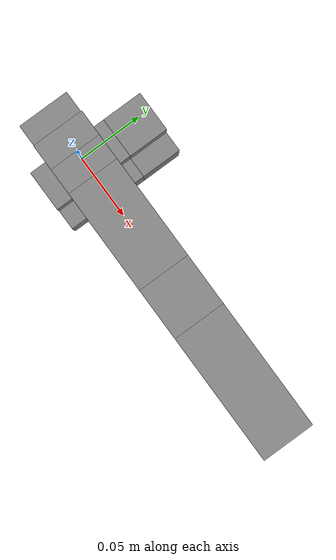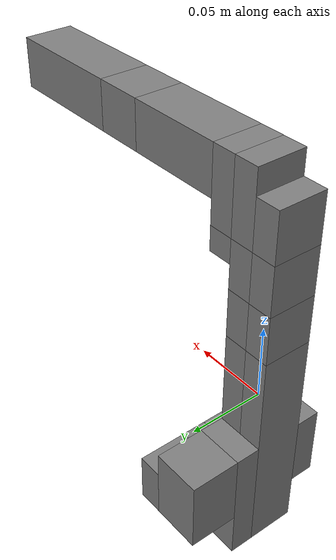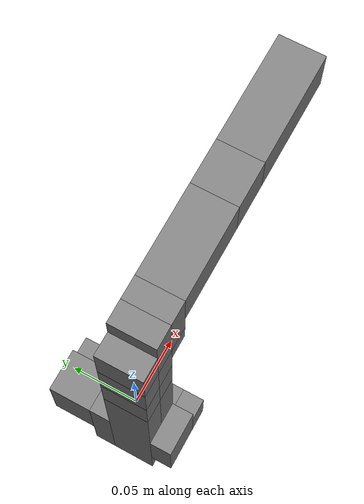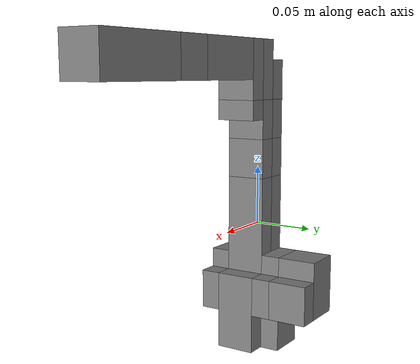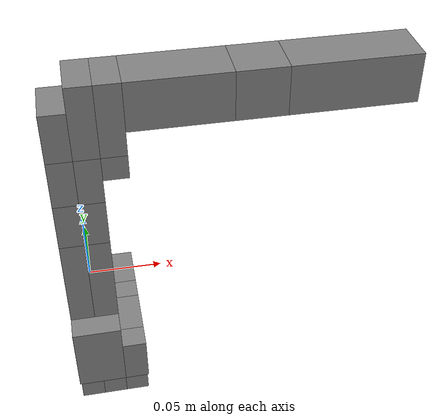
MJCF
<mujoco model="MuJoCo Model">
  <compiler angle="radian"/>

  <worldbody>
    <body name="parent_body">
      <geom name="cube_0" size="0.00827999 0.01656 0.01656" pos="-0.00869718 -0.00310312 0.124676" type="box"/>
      <geom name="cube_1" size="0.00827999 0.01656 0.0745199" pos="-0.00869718 -0.00310312 -0.0326441" type="box"/>
      <geom name="cube_2" size="0.00827999 0.01656 0.01656" pos="-0.00869718 -0.00310312 0.0584358" type="box"/>
      <geom name="cube_3" size="0.00827999 0.01656 0.01656" pos="-0.00869718 -0.00310312 0.0915557" type="box"/>
      <geom name="cube_4" size="0.01656 0.01656 0.02484" pos="-0.000417192 0.0465768 -0.0492041" type="box"/>
      <geom name="cube_5" size="0.01656 0.00827999 0.02484" pos="-0.000417192 -0.0279431 -0.0492041" type="box"/>
      <geom name="cube_6" size="0.01656 0.00827999 0.0413999" pos="-0.000417192 0.0217368 -0.065764" type="box"/>
      <geom name="cube_7" size="0.00827999 0.01656 0.0745199" pos="0.0078628 -0.00310312 -0.0326441" type="box"/>
      <geom name="cube_8" size="0.00827999 0.01656 0.01656" pos="0.0078628 -0.00310312 0.0584358" type="box"/>
      <geom name="cube_9" size="0.00827999 0.01656 0.01656" pos="0.0078628 -0.00310312 0.0915557" type="box"/>
      <geom name="cube_10" size="0.00827999 0.01656 0.02484" pos="0.0078628 -0.00310312 0.132956" type="box"/>
      <geom name="cube_11" size="0.00827999 0.01656 0.01656" pos="0.0244228 0.0465768 -0.0574841" type="box"/>
      <geom name="cube_12" size="0.00827999 0.00827999 0.01656" pos="0.0244228 0.0217368 -0.0574841" type="box"/>
      <geom name="cube_13" size="0.00827999 0.00827999 0.01656" pos="0.0244228 -0.0279431 -0.0574841" type="box"/>
      <geom name="cube_14" size="0.00827999 0.01656 0.00827999" pos="0.0244228 -0.00310312 0.0998357" type="box"/>
      <geom name="cube_15" size="0.00827999 0.01656 0.02484" pos="0.0244228 -0.00310312 0.132956" type="box"/>
      <geom name="cube_16" size="0.00827999 0.01656 0.0331199" pos="0.0244228 -0.00310312 -0.074044" type="box"/>
      <geom name="cube_17" size="0.0331199 0.01656 0.01656" pos="0.0658227 -0.00310312 0.141236" type="box"/>
      <geom name="cube_18" size="0.0413999 0.01656 0.01656" pos="0.173463 -0.00310312 0.141236" type="box"/>
      <geom name="cube_19" size="0.01656 0.01656 0.01656" pos="0.115503 -0.00310312 0.141236" type="box"/>
    </body>
  </worldbody>
</mujoco>
